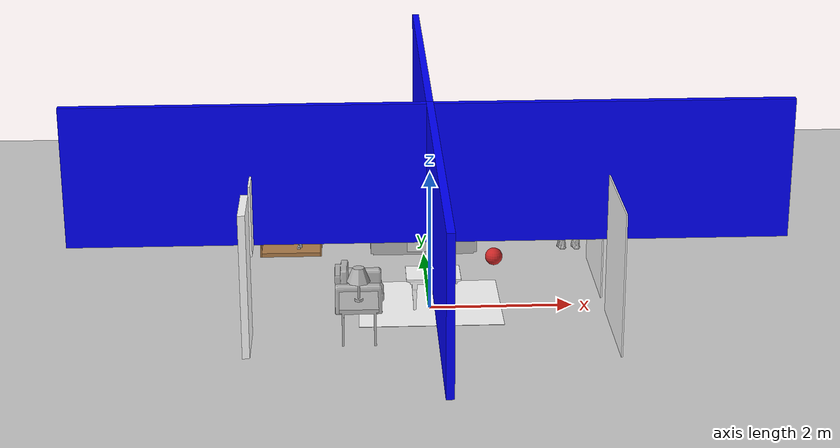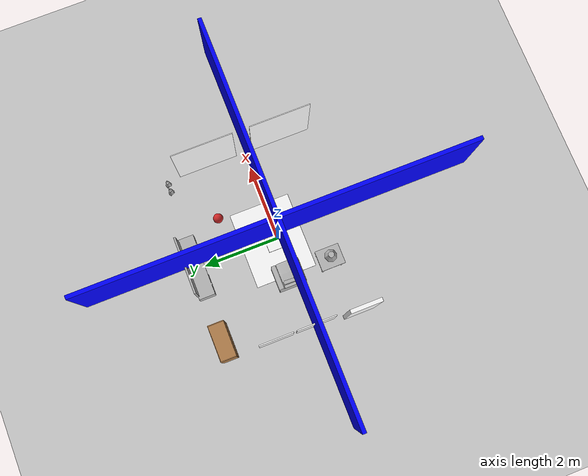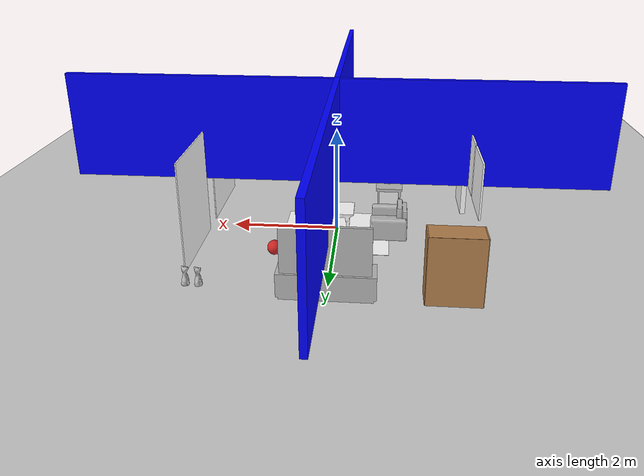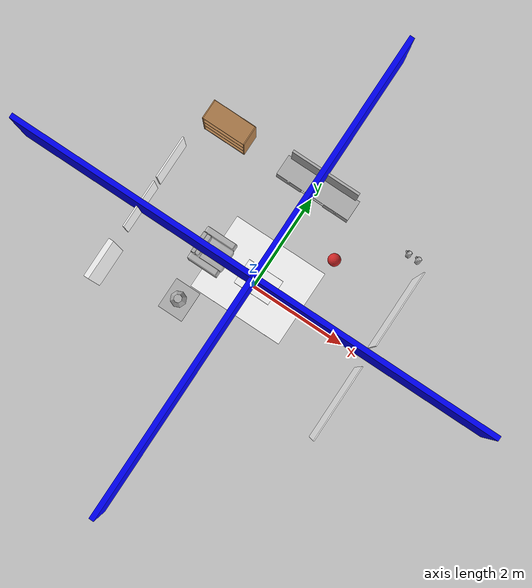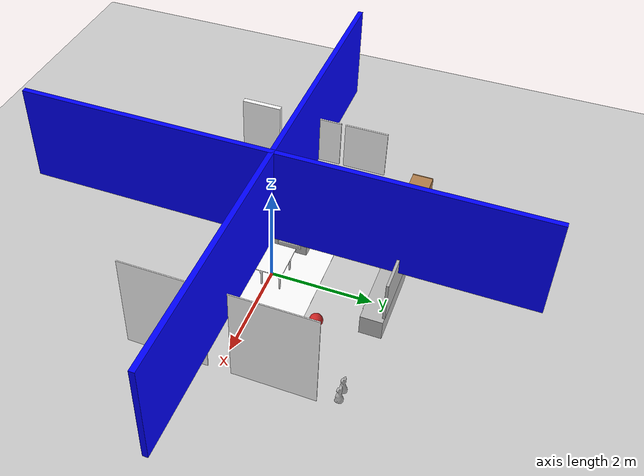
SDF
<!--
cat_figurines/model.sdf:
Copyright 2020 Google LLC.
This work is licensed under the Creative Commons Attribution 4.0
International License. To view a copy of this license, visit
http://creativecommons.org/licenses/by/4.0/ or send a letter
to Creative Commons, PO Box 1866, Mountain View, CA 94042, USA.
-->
<sdf version="1.10">
 <world name="default">
  <scene>
   <shadows>false</shadows>
   <ambient>0.400000006 0.400000006 0.400000006 1</ambient>
   <background>0.699999988 0.699999988 0.699999988 1</background>
  </scene>
  <physics type="ode">
   <real_time_update_rate>200</real_time_update_rate>
   <max_step_size>0.005</max_step_size>
   <real_time_factor>1</real_time_factor>
   <ode>
    <solver>
     <type>quick</type>
     <iters>150</iters>
     <precon_iters>0</precon_iters>
     <sor>1.3999999999999999</sor>
     <use_dynamic_moi_rescaling>true</use_dynamic_moi_rescaling>
    </solver>
    <constraints>
     <cfm>1.0000000000000001e-05</cfm>
     <erp>0.20000000000000001</erp>
     <contact_max_correcting_vel>2000</contact_max_correcting_vel>
     <contact_surface_layer>0.01</contact_surface_layer>
    </constraints>
   </ode>
  </physics>
  <plugin name="gz::sim::systems::Physics" filename="gz-sim-physics-system"/>
  <plugin name="gz::sim::systems::UserCommands" filename="gz-sim-user-commands-system"/>
  <plugin name="gz::sim::systems::SceneBroadcaster" filename="gz-sim-scene-broadcaster-system"/>
  <plugin name="gz::sim::systems::Sensors" filename="gz-sim-sensors-system">
   <render_engine>ogre2</render_engine>
  </plugin>
  <plugin name="gz::sim::systems::Imu" filename="gz-sim-imu-system"/>
  <gravity>0 0 -9.8000000000000007</gravity>
  <magnetic_field>5.5644999999999998e-06 2.2875799999999999e-05 -4.2388400000000002e-05</magnetic_field>
  <atmosphere type="adiabatic"/>
  <include><uri>model://ground plane</uri><name>ground_plane</name></include>
  <model name="makerspet_poster">
   <static>true</static>
   <include><uri>model://makerspet_poster</uri></include>
   <pose>-2.45 1 1.5 0 -0 0</pose>
  </model>
  <model name="kaiaai_poster">
   <static>true</static>
   <include><uri>model://kaiaai_poster</uri></include>
   <pose>-2.45 0 1.5 0 -0 0</pose>
  </model>
  <model name="wall_0">
   <static>true</static>
   <include><uri>model://room_wall_2x5m</uri></include>
   <pose>-2.5 0 1 0 -0 0</pose>
  </model>
  <model name="wall_1">
   <static>true</static>
   <include><uri>model://room_wall_2x5m</uri></include>
   <pose>2.5 0 1 0 -0 0</pose>
  </model>
  <model name="wall_2">
   <static>true</static>
   <include><uri>model://room_wall_2x5m</uri></include>
   <pose>0 2.45 1 0 -0 1.5707</pose>
  </model>
  <model name="wall_3">
   <static>true</static>
   <include><uri>model://room_wall_2x5m</uri></include>
   <pose>0 -2.45 1 0 -0 1.5707</pose>
  </model>
  <light name="sun" type="directional">
   <cast_shadows>false</cast_shadows>
   <pose>0 0 10 0 -0 0</pose>
   <diffuse>0.8 0.8 0.8 1</diffuse>
   <specular>0.2 0.2 0.2 1</specular>
   <intensity>4</intensity>
   <attenuation>
    <range>1000</range>
    <constant>0.9</constant>
    <linear>0.01</linear>
    <quadratic>0.001</quadratic>
   </attenuation>
   <direction>-0.5 0.1 -0.9</direction>
   <spot><inner_angle>0</inner_angle><outer_angle>0</outer_angle><falloff>0</falloff></spot>
  </light>
  <model name="door_08x2m">
   <static>true</static>
   <include><uri>model://door_08x2m</uri></include>
   <pose>-2.495 -1.2 1 0 -0 0</pose>
  </model>
  <model name="Bookshelf">
   <static>true</static>
   <pose>-2 2.4 0 0 -0 0</pose>
   <include><uri>model://Bookshelf</uri></include>
  </model>
  <model name="Cat Figurines">
   <static>true</static>
   <pose>2.21368 2.13863 0.019163 -0.003852 -0.005692 -1e-06</pose>
   <include><uri>model://cat_figurines</uri></include>
  </model>
  <model name="LampAndStand">
   <static>true</static>
   <pose>-1 -1 0 0 -0 1.5707</pose>
   <include><uri>model://LampAndStand</uri></include>
  </model>
  <model name="MiniSofa">
   <static>true</static>
   <pose>-1 0.1 0 0 -0 3.1415</pose>
   <include><uri>model://MiniSofa</uri></include>
  </model>
  <model name="Racoon">
   <static>true</static>
   <pose>-1.87443 2.2 0.059172 -0.005807 -0.005148 1.2</pose>
   <include><uri>model://racoon</uri></include>
  </model>
  <model name="TVStand">
   <static>true</static>
   <pose>0 2.2 0 0 -0 0</pose>
   <include><uri>model://TVStand</uri></include>
  </model>
  <model name="red_ball_10in">
   <static>false</static>
   <pose>1 1.25 0.127 0 -0 0</pose>
   <include><uri>model://red_ball_10in</uri></include>
  </model>
  <model name="rug_ivory_2m">
   <static>true</static>
   <pose>0 0.15 0 0 -0 1.5707</pose>
   <include><uri>model://rug_ivory_2m</uri></include>
  </model>
  <model name="TableMarble">
   <static>true</static>
   <pose>0 0.1 0 0 -0 1.5708</pose>
   <include><uri>model://TableMarble</uri></include>
  </model>
  <model name="tv_65in_emissive">
   <static>true</static>
   <pose>0 2.4 0.9 0 -0 1.5707</pose>
   <include><uri>model://tv_65in_emissive</uri></include>
  </model>
  <model name="window_curtains">
   <static>true</static>
   <pose>2.45 1 1 0 -0 0</pose>
   <include><uri>model://window_curtains</uri></include>
  </model>
  <model name="window_curtains_0">
   <static>true</static>
   <pose>2.45 -1 1 0 -0 0</pose>
   <include><uri>model://window_curtains</uri></include>
  </model>
 </world>
</sdf>

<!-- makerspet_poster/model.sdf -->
<sdf version='1.4'>
  <model name='makerspet_poster'>
    <link name="link">
      <visual name="visual">
        <geometry>
          <box>
            <size>0.03 0.85714 1</size>
          </box>
        </geometry>
        <material>
          <pbr>
            <metal>
              <albedo_map>textures/makerspet_logo_600x700.png</albedo_map>
            <metalness>0.0</metalness><roughness>0.80</roughness>
            </metal>
          </pbr>
          <ambient>1 1 1 1</ambient>
          <diffuse>1 1 1 1</diffuse>
          <specular>1 1 1 1</specular>
          <emissive>0 0 0 1</emissive>
        </material>
      </visual>
    </link>
    <static>1</static>
    <allow_auto_disable>1</allow_auto_disable>
  </model>
</sdf>

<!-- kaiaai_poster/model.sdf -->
<sdf version='1.4'>
  <model name='kaiaai_poster'>
    <link name="link">
      <visual name="visual">
        <geometry>
          <box>
            <size>0.03 0.9782 1</size>
          </box>
        </geometry>
        <material>
          <pbr>
            <metal>
              <albedo_map>textures/kaiaai_logo_450x460.png</albedo_map>
            <metalness>0.0</metalness><roughness>0.80</roughness>
            </metal>
          </pbr>
          <ambient>1 1 1 1</ambient>
          <diffuse>1 1 1 1</diffuse>
          <specular>1 1 1 1</specular>
          <emissive>0 0 0 1</emissive>
        </material>
      </visual>
    </link>
    <static>1</static>
    <allow_auto_disable>1</allow_auto_disable>
  </model>
</sdf>

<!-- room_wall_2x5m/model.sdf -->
<sdf version='1.8'>
  <model name='room_wall_2x5m'>
    <link name="link">
      <pose>0 0 1 0 0 1.570796326795</pose>
      <visual name="visual">
        <geometry>
          <box>
            <size>0.1 5.0 2</size>
          </box>
        </geometry>
        <material>
          <ambient>0.0 0.0 1.0 1</ambient>
          <diffuse>0.0 0.0 1.0 1</diffuse>
          <specular>0.0 0.0 1.0 1</specular>
        </material>
      </visual>
      <collision name ="collision">
        <geometry>
           <box>
            <size>0.1 5.0 2</size>
          </box>
        </geometry>
      </collision>
    </link>
    <static>1</static>
    <allow_auto_disable>1</allow_auto_disable>
  </model>
</sdf>

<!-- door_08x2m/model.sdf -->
<sdf version='1.4'>
  <model name='door_08x2m'>
    <link name="link">
      <visual name="visual">
        <geometry>
          <box>
            <size>0.1 0.8 2</size>
          </box>
        </geometry>
        <material>
          <pbr>
            <metal>
              <albedo_map>textures/door_08x2m.png</albedo_map>
            <metalness>0.0</metalness><roughness>0.70</roughness>
            </metal>
          </pbr>
          <ambient>1 1 1 1</ambient>
          <diffuse>1 1 1 1</diffuse>
          <specular>1 1 1 1</specular>
          <emissive>0 0 0 1</emissive>
        </material>
        <cast_shadows>1</cast_shadows>
        <transparency>0</transparency>
      </visual>
    </link>
    <static>1</static>
    <allow_auto_disable>1</allow_auto_disable>
  </model>
</sdf>

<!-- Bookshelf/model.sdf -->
<sdf version="1.5">
  <model name="Bookshelf">
    <static>true</static>
    <link name="link">
      <inertial>
        <mass>1.0</mass>
      </inertial>
      <collision name="back">
        <pose>0 0.005 0.6 0 0 0</pose>
        <geometry>
          <box>
            <size>0.9 0.01 1.2</size>
          </box>
        </geometry>
      </collision>
      <visual name="visual1">
        <pose>0 0.005 0.6 0 0 0</pose>
        <geometry>
          <box>
            <size>0.9 0.01 1.2</size>
          </box>
        </geometry>
        <material>
          <diffuse>1.0 1.0 1.0</diffuse>
          <script>
            <uri>file://media/materials/scripts/gazebo.material</uri>
            <name>Gazebo/Wood</name>
          </script>
          <!-- PBR for Ignition, material scripts for gazebo classic-->
          <pbr>
            <metal>
              <albedo_map>model://Bookshelf/bookshelf_diffuse.jpg</albedo_map>
            </metal>
          </pbr>
        </material>
      </visual>
      <collision name="left_side">
        <pose>0.45 -0.195 0.6 0 0 0</pose>
        <geometry>
          <box>
            <size>0.02 0.4 1.2</size>
          </box>
        </geometry>
      </collision>
      <visual name="visual2">
        <pose>0.45 -0.195 0.6 0 0 0</pose>
        <geometry>
          <box>
            <size>0.02 0.4 1.2</size>
          </box>
        </geometry>
        <material>
          <diffuse>1.0 1.0 1.0</diffuse>
          <script>
            <uri>file://media/materials/scripts/gazebo.material</uri>
            <name>Gazebo/Wood</name>
          </script>
          <!-- PBR for Ignition, material scripts for gazebo classic-->
          <pbr>
            <metal>
              <albedo_map>model://Bookshelf/bookshelf_diffuse.jpg</albedo_map>
            </metal>
          </pbr>
        </material>
      </visual>
      <collision name="right_side">
        <pose>-0.45 -0.195 0.6 0 0 0</pose>
        <geometry>
          <box>
            <size>0.02 0.4 1.2</size>
          </box>
        </geometry>
      </collision>
      <visual name="visual3">
        <pose>-0.45 -0.195 0.6 0 0 0</pose>
        <geometry>
          <box>
            <size>0.02 0.4 1.2</size>
          </box>
        </geometry>
        <material>
          <diffuse>1.0 1.0 1.0</diffuse>
          <script>
            <uri>file://media/materials/scripts/gazebo.material</uri>
            <name>Gazebo/Wood</name>
          </script>
          <!-- PBR for Ignition, material scripts for gazebo classic-->
          <pbr>
            <metal>
              <albedo_map>model://Bookshelf/bookshelf_diffuse.jpg</albedo_map>
            </metal>
          </pbr>
        </material>
      </visual>
      <collision name="bottom">
        <pose>0 -0.195 0.03 0 0 0</pose>
        <geometry>
          <box>
            <size>0.88 0.4 0.06</size>
          </box>
        </geometry>
      </collision>
      <visual name="visual4">
        <pose>0 -0.195 0.03 0 0 0</pose>
        <geometry>
          <box>
            <size>0.88 0.4 0.06</size>
          </box>
        </geometry>
        <material>
          <diffuse>1.0 1.0 1.0</diffuse>
          <script>
            <uri>file://media/materials/scripts/gazebo.material</uri>
            <name>Gazebo/Wood</name>
          </script>
          <!-- PBR for Ignition, material scripts for gazebo classic-->
          <pbr>
            <metal>
              <albedo_map>model://Bookshelf/bookshelf_diffuse.jpg</albedo_map>
            </metal>
          </pbr>
        </material>
      </visual>
      <collision name="top">
        <pose>0 -0.195 1.19 0 0 0</pose>
        <geometry>
          <box>
            <size>0.88 0.4 0.02</size>
          </box>
        </geometry>
      </collision>
      <visual name="visual5">
        <pose>0 -0.195 1.19 0 0 0</pose>
        <geometry>
          <box>
            <size>0.88 0.4 0.02</size>
          </box>
        </geometry>
        <material>
          <diffuse>1.0 1.0 1.0</diffuse>
          <script>
            <uri>file://media/materials/scripts/gazebo.material</uri>
            <name>Gazebo/Wood</name>
          </script>
          <!-- PBR for Ignition, material scripts for gazebo classic-->
          <pbr>
            <metal>
              <albedo_map>model://Bookshelf/bookshelf_diffuse.jpg</albedo_map>
            </metal>
          </pbr>
        </material>
      </visual>
      <collision name="low_shelf">
        <pose>0 -0.195 0.43 0 0 0</pose>
        <geometry>
          <box>
            <size>0.88 0.4 0.02</size>
          </box>
        </geometry>
      </collision>
      <visual name="visual6">
        <pose>0 -0.195 0.43 0 0 0</pose>
        <geometry>
          <box>
            <size>0.88 0.4 0.02</size>
          </box>
        </geometry>
        <material>
          <diffuse>1.0 1.0 1.0</diffuse>
          <script>
            <uri>file://media/materials/scripts/gazebo.material</uri>
            <name>Gazebo/Wood</name>
          </script>
          <!-- PBR for Ignition, material scripts for gazebo classic-->
          <pbr>
            <metal>
              <albedo_map>model://Bookshelf/bookshelf_diffuse.jpg</albedo_map>
            </metal>
          </pbr>
        </material>
      </visual>
      <collision name="high_shelf">
        <pose>0 -0.195 0.8 0 0 0</pose>
        <geometry>
          <box>
            <size>0.88 0.4 0.02</size>
          </box>
        </geometry>
      </collision>
      <visual name="visual7">
        <pose>0 -0.195 0.8 0 0 0</pose>
        <geometry>
          <box>
            <size>0.88 0.4 0.02</size>
          </box>
        </geometry>
        <material>
          <diffuse>1.0 1.0 1.0</diffuse>
          <script>
            <uri>file://media/materials/scripts/gazebo.material</uri>
            <name>Gazebo/Wood</name>
          </script>
          <!-- PBR for Ignition, material scripts for gazebo classic-->
          <pbr>
            <metal>
              <albedo_map>model://Bookshelf/bookshelf_diffuse.jpg</albedo_map>
            </metal>
          </pbr>
        </material>
      </visual>
    </link>
  </model>
</sdf>

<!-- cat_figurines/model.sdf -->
<sdf version="1.6">
  <model name="Cat Figurines">
    <link name="link_0">
      <visual name="visual">
        <geometry>
          <mesh>
            <uri>meshes/model.obj</uri>
            <scale>3 3 3</scale>
          </mesh>
        </geometry>
      </visual>
      <collision name="collision_0">
        <geometry>
          <mesh>
            <uri>meshes/model.obj</uri>
            <scale>3 3 3</scale>
          </mesh>
        </geometry>
      </collision>
    </link>
  </model>
</sdf>

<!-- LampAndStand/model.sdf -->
<sdf version="1.6">
  <model name="LampAndStand">
   <static>true</static>
    <link name="body">
      <pose>0 0 0 0 0 0</pose>

      <visual name="visual">
        <geometry>
          <mesh>
            <uri>model://LampAndStand/meshes/LampAndStand.obj</uri>
          </mesh>
        </geometry>
      </visual>

      <collision name="collision">
        <geometry>
          <mesh>
            <uri>model://LampAndStand/meshes/LampAndStand_Col.obj</uri>
          </mesh>
        </geometry>
      </collision>

    </link>
  </model>
</sdf>

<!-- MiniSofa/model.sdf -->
<sdf version="1.6">
  <model name='MiniSofa'>
    <link name="body">
      <pose>0 0 0 0 0 -1.57079632679</pose>

      <visual name="visual">
        <geometry>
          <mesh>
            <uri>model://MiniSofa/meshes/minisofa.obj</uri>
            <scale>1.00 1.00 1.00</scale>
          </mesh>
        </geometry>
      </visual>

      <collision name="collision">
        <geometry>
          <mesh>
            <uri>model://MiniSofa/meshes/minisofa.obj</uri>
            <scale>1.00 1.00 1.00</scale>
          </mesh>
        </geometry>
      </collision>

    </link>
  </model>
</sdf>

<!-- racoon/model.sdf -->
<sdf version="1.6">
  <model name="Racoon">
    <link name="link_0">
      <visual name="visual">
        <geometry>
          <mesh>
            <uri>meshes/model.obj</uri>
          </mesh>
        </geometry>
      </visual>
      <collision name="collision_0">
        <geometry>
          <mesh>
            <uri>meshes/model.obj</uri>
          </mesh>
        </geometry>
      </collision>
    </link>
  </model>
</sdf>

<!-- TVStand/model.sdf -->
<sdf version="1.6">
  <model name="TVStand">
   <static>true</static>
    <link name="body">
      <pose>0 0 0 0 0 0</pose>

      <visual name="visual">
        <geometry>
          <mesh>
            <uri>meshes/TVStand.obj</uri>
          </mesh>
        </geometry>
      </visual>

      <collision name="collision">
        <geometry>
          <mesh>
            <uri>meshes/TVStand_Col.obj</uri>
          </mesh>
        </geometry>
      </collision>

    </link>
  </model>
</sdf>

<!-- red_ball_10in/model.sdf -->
<sdf version="1.5">
  <model name="red_ball_10in">
    <pose>0 0 0.127 0 0 0</pose>
    <link name="link">
      <inertial>
        <mass>0.213</mass>
        <inertia>
          <ixx>0.003226667</ixx>
          <ixy>0</ixy>
          <ixz>0</ixz>
          <iyy>0.003226667</iyy>
          <iyz>0</iyz>
          <izz>0.003226667</izz>
        </inertia>
      </inertial>
      <visual name="visual">
        <geometry>
          <sphere>
            <radius>0.127</radius>
          </sphere>
        </geometry>
        <material>
          <script>
            <uri>file://media/materials/scripts/gazebo.material</uri>
            <name>Gazebo/Red</name>
          </script>
          <emissive>1 0 0 1</emissive>
        </material>
      </visual>
      <collision name="collision">
        <geometry>
          <sphere>
            <radius>0.127</radius>
          </sphere>
        </geometry>
        <surface>
          <bounce>
            <restitution_coefficient>0.15937</restitution_coefficient>
            <threshold>0</threshold>
          </bounce>
          <contact>
            <ode>
              <max_vel>100</max_vel>
              <min_depth>0.001</min_depth>
            </ode>
          </contact>
        </surface>
      </collision>
    </link>
  </model>
</sdf>

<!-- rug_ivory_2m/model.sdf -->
<sdf version='1.4'>
  <model name='rug_ivory_2m'>
    <link name="link">
      <visual name="visual">
        <geometry>
          <box>
            <size>1.6 2 0.005</size>
          </box>
        </geometry>
        <material>
          <pbr>
            <metal>
              <albedo_map>textures/rug_ivory_469x588.png</albedo_map>
            <metalness>0.0</metalness><roughness>0.95</roughness>
            </metal>
          </pbr>
          <ambient>1 1 1 1</ambient>
          <diffuse>1 1 1 1</diffuse>
          <specular>1 1 1 1</specular>
          <emissive>0 0 0 1</emissive>
        </material>
      </visual>
    </link>
    <static>1</static>
    <allow_auto_disable>1</allow_auto_disable>
  </model>
</sdf>

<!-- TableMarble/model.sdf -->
<sdf version="1.5">
  <model name="table_marble">
    <static>true</static>
    <pose>0 0 0.324 0 0 0</pose>
    <link name="link">
      <!-- tabletop + apron: world z 0.28..0.48, far above the robot -->
      <collision name="collision_top">
        <pose>0 -0.05 0.06 0 0 0</pose>
        <geometry><box><size>0.52 0.76 0.20</size></box></geometry>
      </collision>
      <!-- four legs, measured from the mesh: local x +/-0.185, y -0.315 / +0.215,
           floor to apron -->
      <collision name="collision_leg_1">
        <pose>0.185 -0.315 -0.182 0 0 0</pose>
        <geometry><box><size>0.05 0.06 0.284</size></box></geometry>
      </collision>
      <collision name="collision_leg_2">
        <pose>-0.185 -0.315 -0.182 0 0 0</pose>
        <geometry><box><size>0.05 0.06 0.284</size></box></geometry>
      </collision>
      <collision name="collision_leg_3">
        <pose>0.185 0.215 -0.182 0 0 0</pose>
        <geometry><box><size>0.05 0.06 0.284</size></box></geometry>
      </collision>
      <collision name="collision_leg_4">
        <pose>-0.185 0.215 -0.182 0 0 0</pose>
        <geometry><box><size>0.05 0.06 0.284</size></box></geometry>
      </collision>
      <visual name="visual">
        <geometry>
          <mesh>
            <uri>meshes/table_lightmap.dae</uri>
            <scale>0.05 0.1 0.125</scale>
          </mesh>
        </geometry>
        <material>
          <pbr>
            <metal>
              <albedo_map>textures/marble.png</albedo_map>
            </metal>
          </pbr>
          <ambient>1 1 1 1</ambient>
          <diffuse>1 1 1 1</diffuse>
          <specular>1 1 1 1</specular>
          <emissive>0 0 0 1</emissive>
        </material>
      </visual>
    </link>
  </model>
</sdf>

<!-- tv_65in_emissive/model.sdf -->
<sdf version='1.4'>
  <model name='tv_65in_emissive'>
    <link name="link">
      <visual name="visual">
        <geometry>
          <box>
            <size>0.05 1.45 0.83</size>
          </box>
        </geometry>
        <material>
          <script>
            <uri>model://tv_65in_emissive/material/script</uri>
            <uri>model://tv_65in_emissive/material/textures</uri>
            <name>Custom/tv_emissive</name>
          </script>
        </material>
      </visual>
    </link>
    <static>1</static>
    <allow_auto_disable>1</allow_auto_disable>
  </model>
</sdf>

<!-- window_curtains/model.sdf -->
<sdf version='1.4'>
  <model name='window_curtains'>
    <link name="link">
      <visual name="visual">
        <geometry>
          <box>
            <size>0.02 1.5676 2</size>
          </box>
        </geometry>
        <material>
          <pbr>
            <metal>
              <emissive_map>textures/window_curtains.png</emissive_map>
            <metalness>0.0</metalness><roughness>0.95</roughness>
            </metal>
          </pbr>
          <ambient>1 1 1 1</ambient>
          <diffuse>1 1 1 1</diffuse>
          <specular>1 1 1 1</specular>
          <emissive>0.4 0.4 0.4 1</emissive>
        </material>
      </visual>
    </link>
    <static>1</static>
    <allow_auto_disable>1</allow_auto_disable>
  </model>
</sdf>
